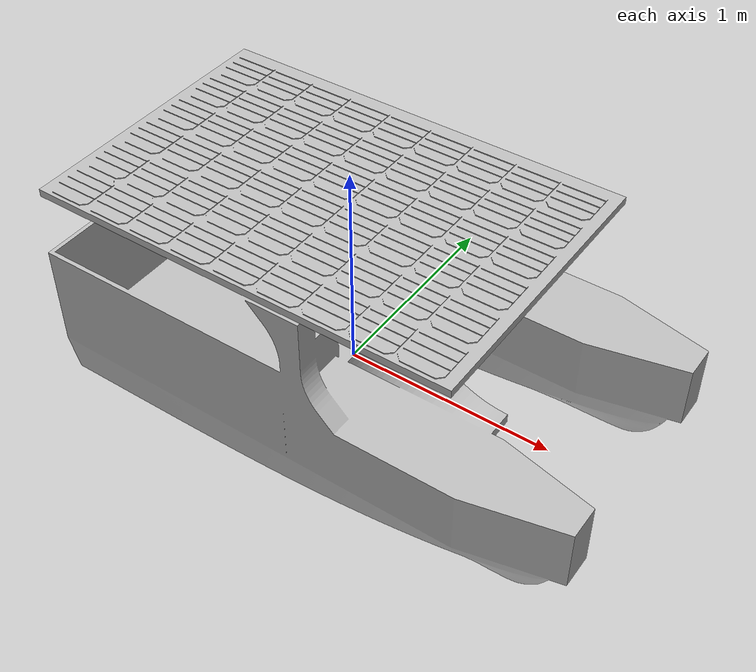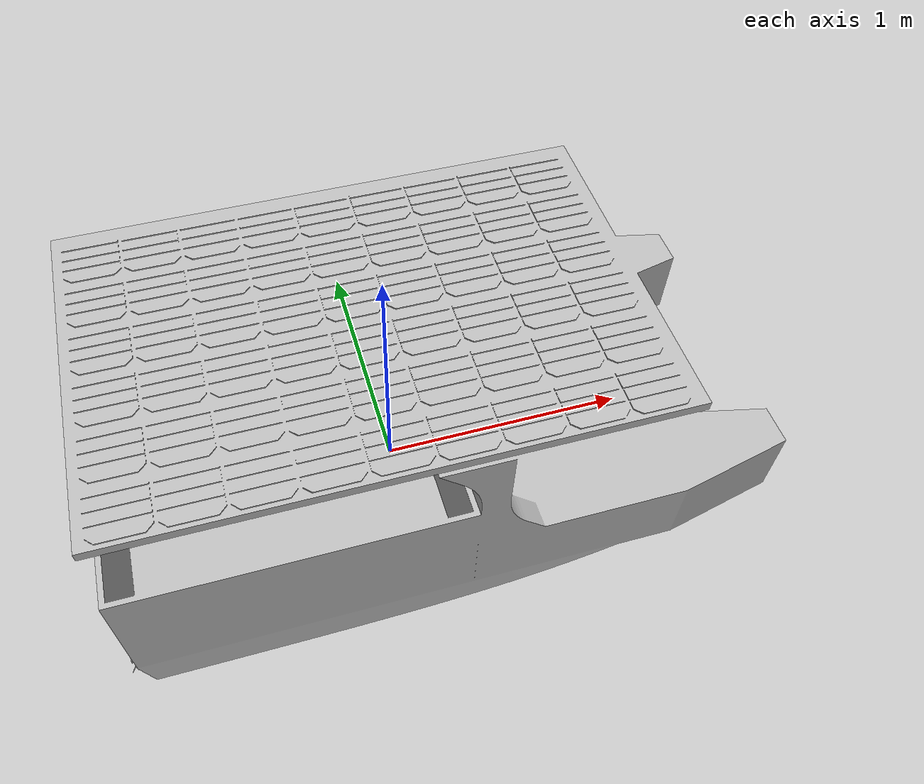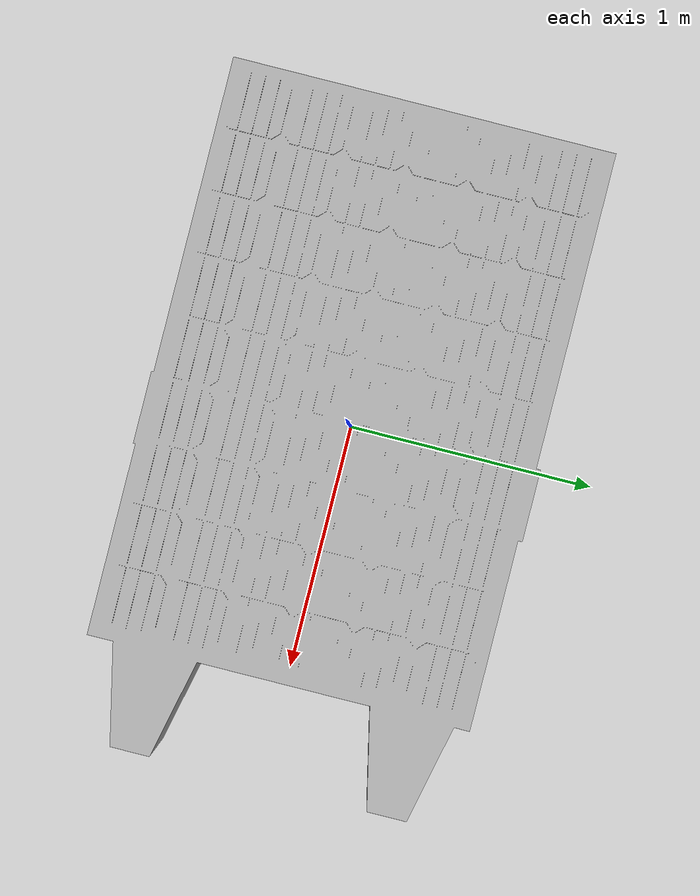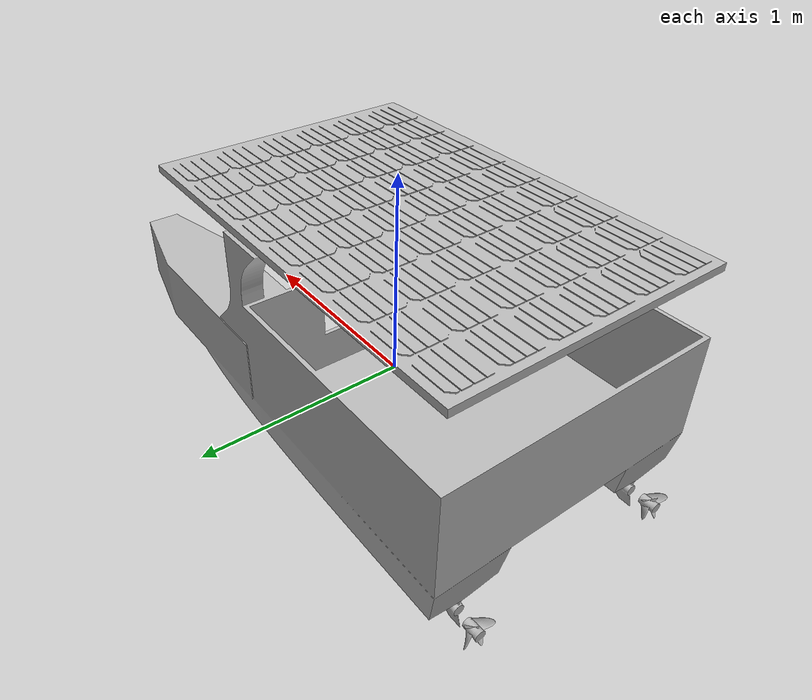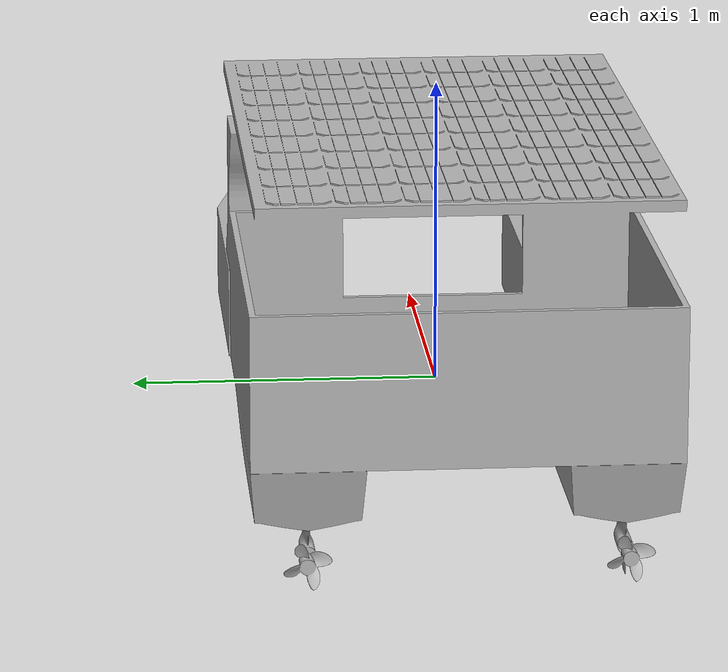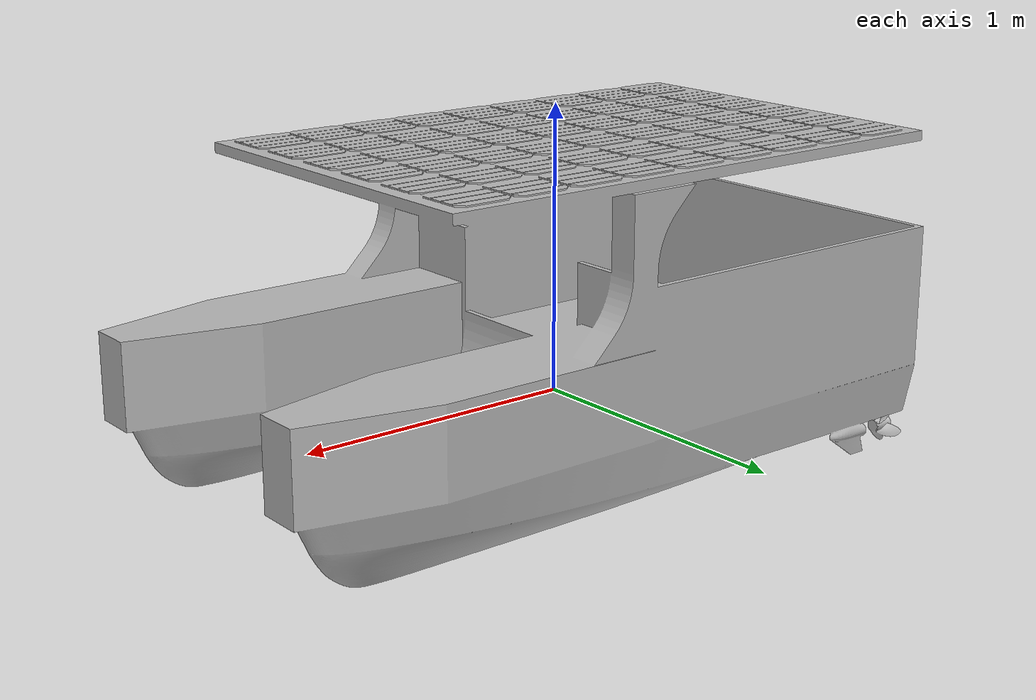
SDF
<sdf version='1.7'>
  <model name='boat_1'>
    <link name='hull_1'>
      <inertial>
        <pose>0.055 0 -0.5 0 -0 0</pose>
        <mass>2000</mass>
        <inertia>
          <ixx>5000</ixx>
          <ixy>0</ixy>
          <ixz>0</ixz>
          <iyy>5000</iyy>
          <iyz>0</iyz>
          <izz>5000</izz>
        </inertia>
      </inertial>
      <collision name='hull_1_fixed_joint_lump__hull_collision_collision'>
        <pose>0 0 0 0 -0 0</pose>
        <geometry>
          <box>
            <size>2 1.33 1.7</size>
          </box>
        </geometry>
      </collision>
      <collision name='hull_1_fixed_joint_lump__stabilizer_left_collision_1'>
        <pose>0 1 0 0 -0 0</pose>
        <geometry>
          <box>
            <size>1 0.1 0.1</size>
          </box>
        </geometry>
      </collision>
      <collision name='hull_1_fixed_joint_lump__stabilizer_right_collision_2'>
        <pose>0 -1 0 0 -0 0</pose>
        <geometry>
          <box>
            <size>1 0.1 0.1</size>
          </box>
        </geometry>
      </collision>
      <visual name='hull_1_visual'>
        <pose>0 0 0 0 -0 0</pose>
        <geometry>
          <mesh>
            <scale>1 1 1</scale>
            <uri>model://boat_1/meshes/boat.stl</uri>
          </mesh>
        </geometry>
      </visual>
      <velocity_decay>
        <linear>0.1</linear>
        <angular>50</angular>
      </velocity_decay>
    </link>
    <joint name='prop_joint_left' type='revolute'>
      <pose relative_to='hull_1'>-1.1 -0.5 -0.24 0 -0 0</pose>
      <parent>hull_1</parent>
      <child>propeller_left</child>
      <axis>
        <xyz>1 0 0</xyz>
        <limit>
          <lower>-1e+16</lower>
          <upper>1e+16</upper>
        </limit>
        <dynamics>
          <spring_reference>0</spring_reference>
          <spring_stiffness>0</spring_stiffness>
        </dynamics>
      </axis>
    </joint>
    <link name='propeller_left'>
      <pose relative_to='prop_joint_left'>0 0 0 0 -0 0</pose>
      <inertial>
        <pose>0 0 0 0 -0 0</pose>
        <mass>50</mass>
        <inertia>
          <ixx>0.1</ixx>
          <ixy>0</ixy>
          <ixz>0</ixz>
          <iyy>0.1</iyy>
          <iyz>0</iyz>
          <izz>0.1</izz>
        </inertia>
      </inertial>
      <visual name='propeller_left_visual'>
        <pose>0 0 0 0 -0 0</pose>
        <geometry>
          <mesh>
            <scale>1 1 1</scale>
            <uri>model://boat_1/meshes/prop.stl</uri>
          </mesh>
        </geometry>
      </visual>
    </link>
    <joint name='prop_joint_right' type='revolute'>
      <pose relative_to='hull_1'>-1.1 0.5 -0.24 0 -0 0</pose>
      <parent>hull_1</parent>
      <child>propeller_right</child>
      <axis>
        <xyz>-1 0 0</xyz>
        <limit>
          <lower>-1e+16</lower>
          <upper>1e+16</upper>
        </limit>
        <dynamics>
          <spring_reference>0</spring_reference>
          <spring_stiffness>0</spring_stiffness>
        </dynamics>
      </axis>
    </joint>
    <link name='propeller_right'>
      <pose relative_to='prop_joint_right'>0 0 0 0 -0 0</pose>
      <inertial>
        <pose>0 0 0 0 -0 0</pose>
        <mass>50</mass>
        <inertia>
          <ixx>0.1</ixx>
          <ixy>0</ixy>
          <ixz>0</ixz>
          <iyy>0.1</iyy>
          <iyz>0</iyz>
          <izz>0.1</izz>
        </inertia>
      </inertial>
      <visual name='propeller_right_visual'>
        <pose>0 0 0 0 -0 0</pose>
        <geometry>
          <mesh>
            <scale>1 1 1</scale>
            <uri>model://boat_1/meshes/prop.stl</uri>
          </mesh>
        </geometry>
      </visual>
    </link>
    <plugin name='ignition::gazebo::systems::Thruster' filename='libignition-gazebo-thruster-system.so'>
      <joint_name>prop_joint_left</joint_name>
      <thrust_coefficient>0.1</thrust_coefficient>
      <fluid_density>1000</fluid_density>
      <propeller_diameter>0.2</propeller_diameter>
      <velocity_control>1</velocity_control>
      <p_gain>0.1</p_gain>
    </plugin>
    <plugin name='ignition::gazebo::systems::Thruster' filename='libignition-gazebo-thruster-system.so'>
      <joint_name>prop_joint_right</joint_name>
      <thrust_coefficient>0.1</thrust_coefficient>
      <fluid_density>1000</fluid_density>
      <propeller_diameter>0.2</propeller_diameter>
      <velocity_control>1</velocity_control>
      <p_gain>0.1</p_gain>
    </plugin>
    <static>0</static>
    <plugin name='ignition::gazebo::systems::Hydrodynamics' filename='libignition-gazebo-hydrodynamics-system.so'>
      <link_name>hull_1</link_name>
      <linear_drag_coefficients>1 50 50</linear_drag_coefficients>
      <angular_drag_coefficients>5000 5000 5000</angular_drag_coefficients>

    </plugin>

<!-- Joint Controllers -->

<plugin filename="libignition-gazebo-joint-controller-system.so"
        name="ignition::gazebo::systems::JointController">

  <joint_name>prop_joint_left</joint_name>
  <joint_name>prop_joint_right</joint_name>

</plugin>

  </model>
</sdf>
